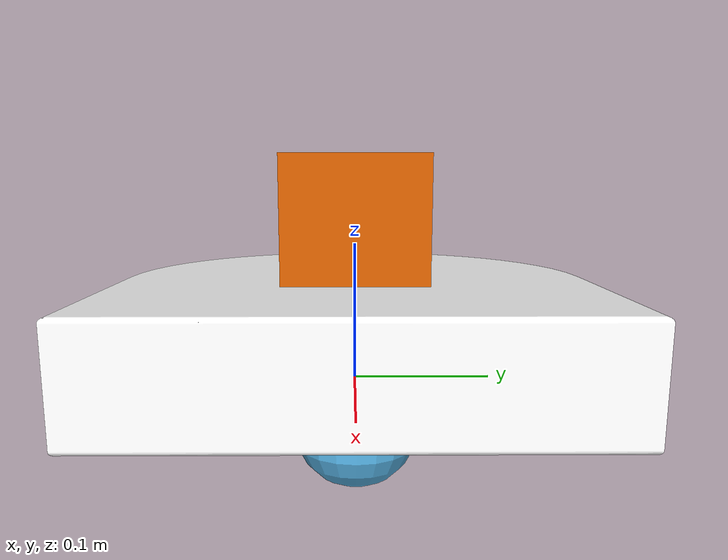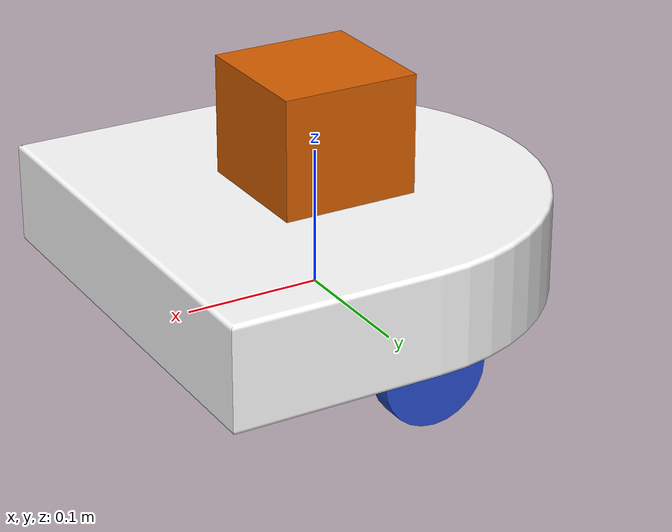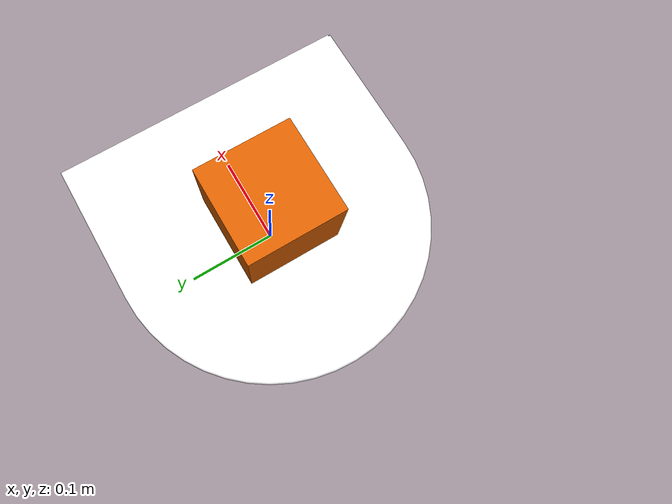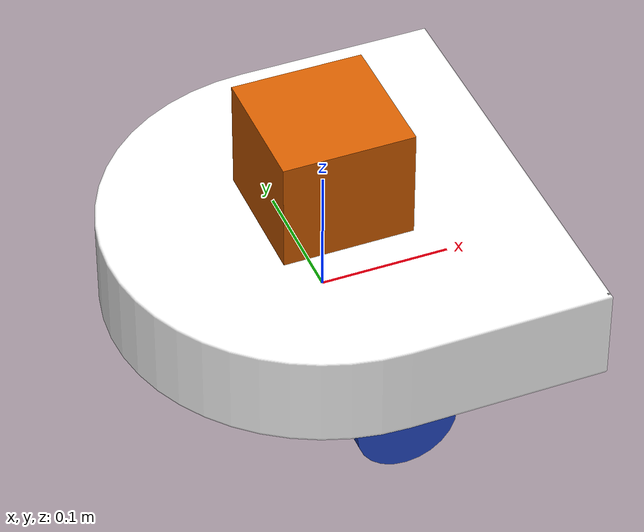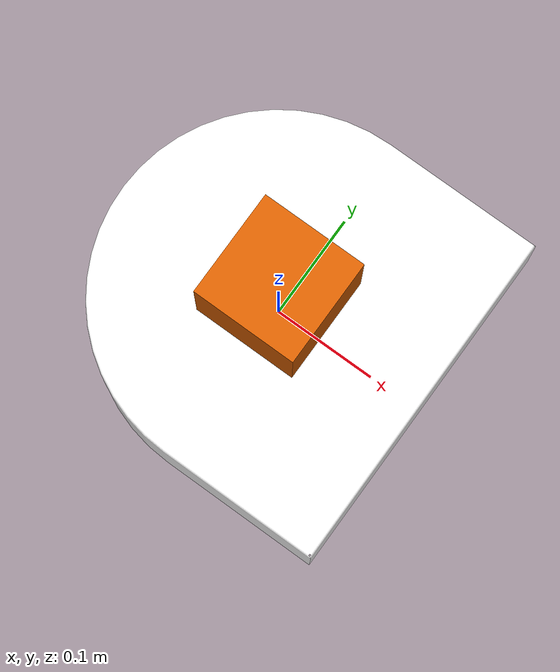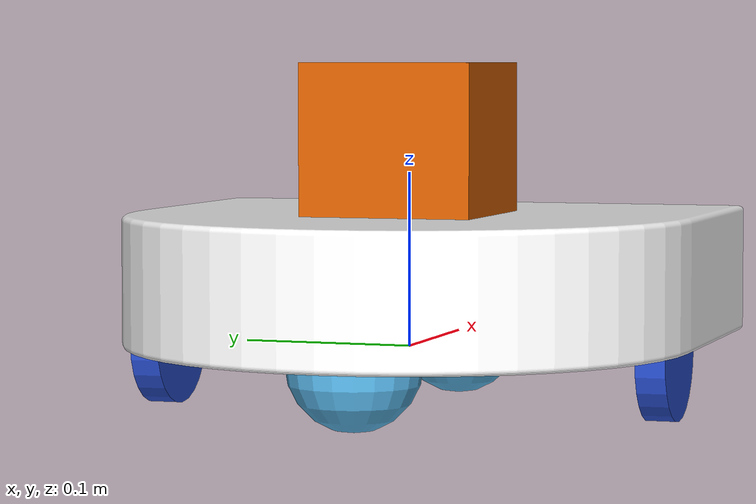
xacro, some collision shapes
<?xml version='1.0'?>
<robot name="my_robot"
    xmlns:xacro="http://www.ros.org/wiki/xacro">
    <xacro:include filename="$(find my_robot)/urdf/my_robot.gazebo" />
    <link name="robot_footprint"></link>
    <joint name="robot_footprint_joint" type="fixed">
        <origin xyz="0 0 0" rpy="0 0 0" />
        <parent link="robot_footprint"/>
        <child link="chassis" />
    </joint>
    <link name='chassis'>
        <pose>0 0 0.1 0 0 0</pose>
        <inertial>
            <mass value="15.0"/>
            <origin xyz="0.0 0 0" rpy=" 0 0 0"/>
            <inertia
          ixx="0.1" ixy="0" ixz="0"
          iyy="0.1" iyz="0"
          izz="0.1"
      />
        </inertial>
        <collision name='collision'>
            <origin xyz="0 0 0" rpy=" 0 0 0"/>
            <geometry>
                <box size=".4 .02 .01"/>
            </geometry>
        </collision>
        <visual name='chassis_visual'>
            <origin xyz="0 0 0" rpy=" 0 0 0"/>
            <geometry>
                <mesh filename="package://my_robot/meshes/xv-11.dae"/>
            </geometry>
        </visual>
        <collision name='back_caster_collision'>
            <origin xyz="-0.1 0 0" rpy=" 0 0 0"/>
            <geometry>
                <sphere radius="0.0380"/>
            </geometry>
        </collision>
        <visual name='back_caster_visual'>
            <origin xyz="-0.1 0 0" rpy=" 0 0 0"/>
            <geometry>
                <sphere radius="0.0380"/>
            </geometry>
        </visual>
        <collision name='front_caster_collision'>
            <origin xyz="0.1 0 0.0" rpy=" 0 0 0"/>
            <geometry>
                <sphere radius="0.0380"/>
            </geometry>
        </collision>
        <visual name='front_caster_visual'>
            <origin xyz="0.1 0 0" rpy=" 0 0 0"/>
            <geometry>
                <sphere radius="0.0380"/>
            </geometry>
        </visual>
    </link>
    <link name='left_wheel'>
        <pose>0 0 0 0 0 0</pose>
        <inertial>
            <mass value="5.0"/>
            <origin xyz="0.0 0 0" rpy=" 0 1.5707 1.5707"/>
            <inertia
          ixx="0.1" ixy="0" ixz="0"
          iyy="0.1" iyz="0"
          izz="0.1"
      />
        </inertial>
        <collision name='collision'>
            <origin xyz="0 0 0" rpy=" 0 1.5707 1.5707"/>
            <geometry>
                <cylinder radius="0.0381" length="0.017"/>
            </geometry>
        </collision>
        <visual name='left_wheel_visual'>
            <origin xyz="0 0 0" rpy=" 0 1.5707 1.5707"/>
            <geometry>
                <cylinder radius="0.0381" length="0.017"/>
            </geometry>
            <material name="blue"/>
        </visual>
    </link>
    <link name='right_wheel'>
        <pose>0 0 0 0 0 0</pose>
        <inertial>
            <mass value="5.0"/>
            <origin xyz="0.0 0 0" rpy=" 0 1.5707 1.5707"/>
            <inertia
          ixx="0.1" ixy="0" ixz="0"
          iyy="0.1" iyz="0"
          izz="0.1"
      />
        </inertial>
        <collision name='collision'>
            <origin xyz="0 0 0" rpy=" 0 1.5707 1.5707"/>
            <geometry>
                <cylinder radius="0.0381" length="0.017"/>
            </geometry>
        </collision>
        <visual name='right_wheel_visual'>
            <origin xyz="0 0 0" rpy=" 0 1.5707 1.5707"/>
            <geometry>
                <cylinder radius="0.0381" length="0.017"/>
            </geometry>
            <material name="blue"/>
        </visual>
    </link>
    <joint type="continuous" name="left_wheel_hinge">
        <origin xyz="0 0.15 0" rpy="0 0 0"/>
        <child link="left_wheel"/>
        <parent link="chassis"/>
        <axis xyz="0 1 0" rpy="0 0 0"/>
        <limit effort="10000" velocity="1000"/>
        <dynamics damping="1.0" friction="1.0"/>
    </joint>
    <joint type="continuous" name="right_wheel_hinge">
        <origin xyz="0 -0.15 0" rpy="0 0 0"/>
        <child link="right_wheel"/>
        <parent link="chassis"/>
        <axis xyz="0 1 0" rpy="0 0 0"/>
        <limit effort="10000" velocity="1000"/>
        <dynamics damping="1.0" friction="1.0"/>
    </joint>
    <link name="camera">
        <pose>0 0 0 0 0 0</pose>
        <inertial>
            <mass value="0.1"/>
            <origin xyz="0 0 0" rpy="0 0 0"/>
            <inertia
          ixx="1e-6" ixy="0" ixz="0"
          iyy="1e-6" iyz="0"
          izz="1e-6"
      />
        </inertial>
        <visual name="camera_visual">
            <origin xyz="0 0 0" rpy=" 0 0 0"/>
            <geometry>
                <box size="0.05 0.05 0.05"/>
            </geometry>
        </visual>
        <collision name="collision">
            <origin xyz="0 0 0" rpy=" 0 0 0"/>
            <geometry>
                <box size="0.05 0.05 0.05"/>
            </geometry>
        </collision>
    </link>
    <joint type="fixed" name="camera_joint">
        <origin xyz="0.125 0 0.04" rpy="0 0 0"/>
        <child link="camera"/>
        <parent link="chassis"/>
        <axis xyz="0 1 0" rpy="0 0 0"/>
        <limit effort="10000" velocity="1000"/>
        <dynamics damping="1.0" friction="1.0"/>
    </joint>
    <link name="hokuyo">
        <inertial>
            <mass value="1e-5"/>
            <origin xyz="0 0 0" rpy="0 0 0"/>
            <inertia
            ixx="1e-6" ixy="0" ixz="0" iyy="1e-6" iyz="0" izz="1e-6"
            />
        </inertial>
        <collision name='collision'>
            <origin xyz="0 0 0" rpy=" 0 0 0"/>
            <geometry>
                <box size="0.1 0.1 0.1"/>
            </geometry>
        </collision>
        <visual name='hokuyo_visual'>
            <origin xyz="0 0 0" rpy="0 0 0"/>
            <geometry>
                <mesh filename="package://my_robot/meshes/hokuyo.dae"/>
            </geometry>
        </visual>
    </link>
    <joint type="fixed" name="hokuyo_joint">
        <origin xyz="0 0.0 0.113" rpy="0 0 0"/>
        <child link="hokuyo"/>
        <parent link="chassis"/>
        <axis xyz="0 1 0" rpy="0 0 0"/>
        <limit effort="10000" velocity="1000"/>
        <dynamics damping="1.0" friction="1.0"/>
    </joint>
</robot>
